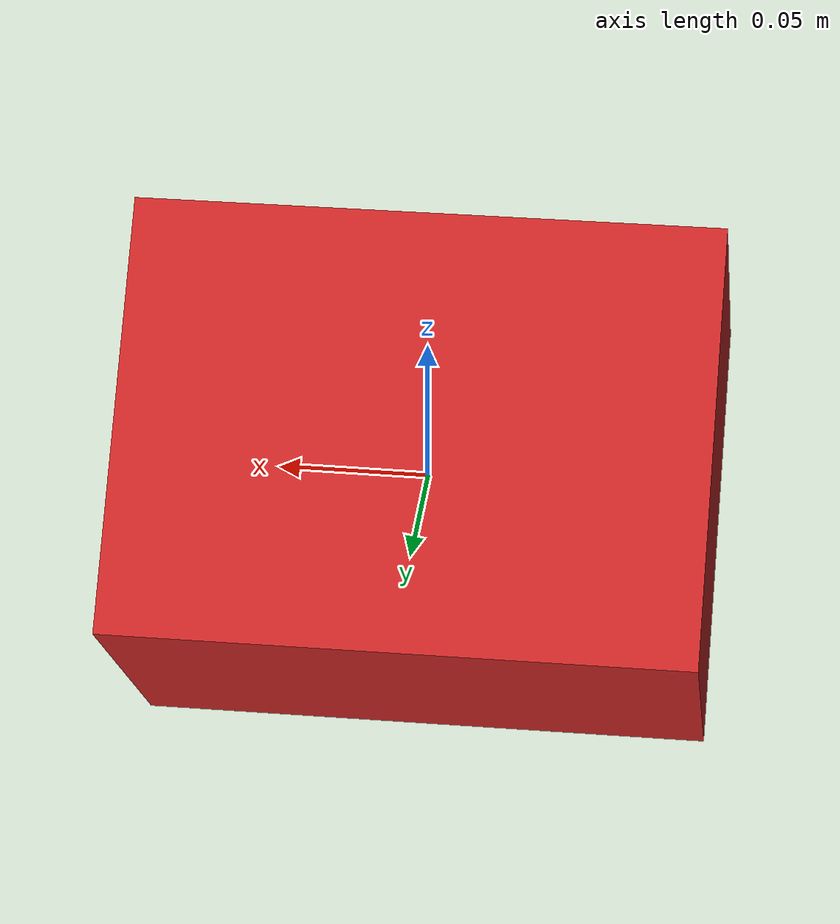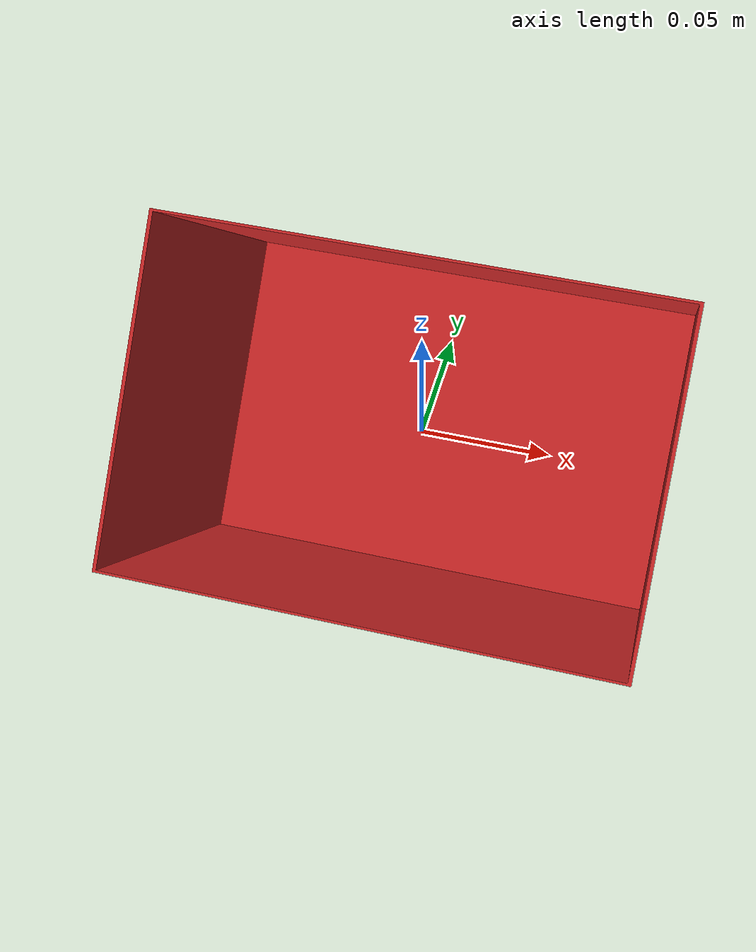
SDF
<?xml version="1.0" ?>
<sdf version="1.6">
  <model name="CAJAF">
    <static>true</static>
    <link name="box">
      <pose>0 0 0 0 -0.785398 1.5708</pose>
      <collision name="collision">
        <geometry>
          <mesh>
            <uri>model://CAJAF/meshes/CAJAF.stl</uri>
            <scale>0.8 0.4 0.6</scale>
          </mesh>
        </geometry>
      </collision>
      <visual name="visual">
        <geometry>
          <mesh>
            <uri>model://CAJAF/meshes/CAJAF.stl</uri>
            <scale>0.8 0.5 0.6</scale>
          </mesh>
        </geometry>
        <material>
          <script>
            <uri>file://media/materials/scripts/gazebo.material</uri>
            <name>Gazebo/Red</name>
          </script>
        </material>
      </visual>
    </link>
  </model>
</sdf>
